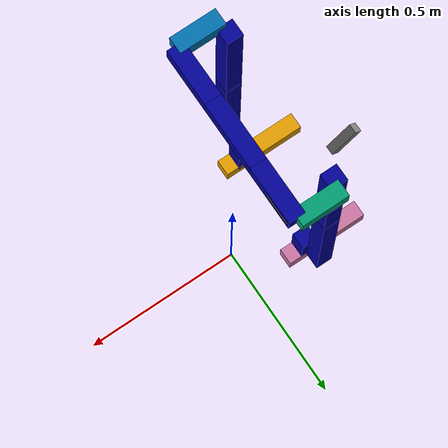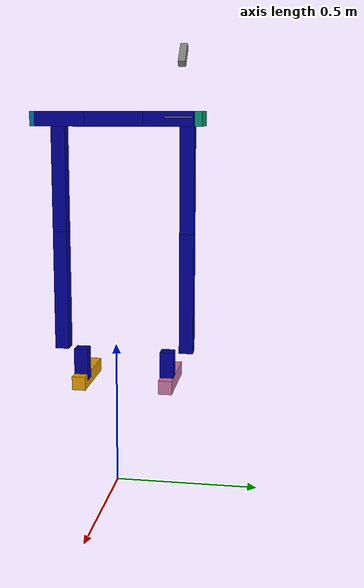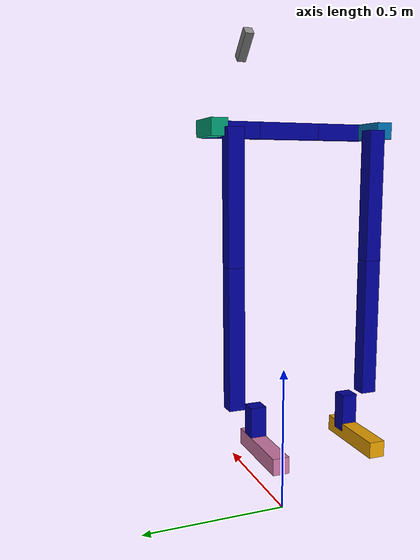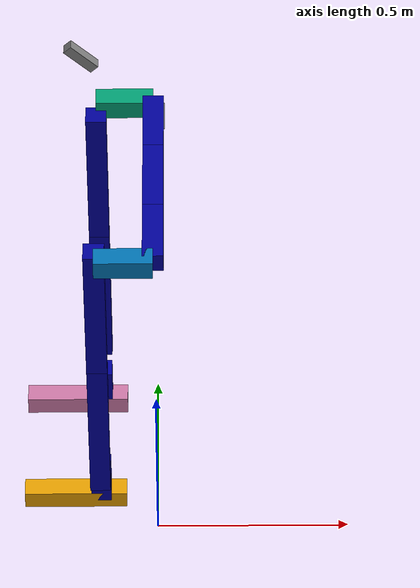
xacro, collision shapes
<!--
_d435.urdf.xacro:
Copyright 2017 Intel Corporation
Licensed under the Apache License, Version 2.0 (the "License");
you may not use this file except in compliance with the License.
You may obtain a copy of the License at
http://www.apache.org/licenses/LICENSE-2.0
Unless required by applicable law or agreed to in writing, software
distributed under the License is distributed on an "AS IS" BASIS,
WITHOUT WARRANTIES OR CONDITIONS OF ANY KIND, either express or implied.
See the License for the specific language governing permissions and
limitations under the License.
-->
<?xml version="1.0"?>
<!-- Revolute-Revolute Manipulator -->
<robot name="march" xmlns:xacro="http://www.ros.org/wiki/xacro">
    <!-- Switch between airgaiting or standing on the ground-->
    <!-- Value set to: 'world' fixes the robot to the world-->
    <!-- Value set to: 'base_link' makes the robot stand on the ground also set launch parameter fixed to false and set
    the hover_height to 0.0. Set ground_gait to true to ground gait in simulation.-->
    <xacro:arg name="ground_gait" default="false"/>

    <!--    Switch between using the physical camera and the simulation camera -->
    <!--    If set to 'true', no physical camera is needed -->
    <!--    If this value is set to 'false', the plugin will not be started and the topics -->
    <!--    published by the real camera will be used. -->
    <!--    In both these situations the camera will still be visible and placed in the urdf,-->
    <!--    to be used for the transformations.-->
    <xacro:arg name="realsense_simulation" default="false"/>

    <xacro:unless value="$(arg ground_gait)">
        <xacro:property name="parent_name" value="world"/>
        <xacro:property name="hover_height" value="0.3"/>
    </xacro:unless>
    <xacro:if value="$(arg ground_gait)">
        <xacro:property name="parent_name" value="base_link"/>
        <xacro:property name="hover_height" value="0.0"/>
        <gazebo>
            <plugin name="com_controller_plugin" filename="libmarch_gazebo_plugins.so"/>
        </gazebo>
    </xacro:if>

    <xacro:arg name="max_effort_rotary" default="18000.0" />
    <xacro:arg name="max_effort_linear" default="22932.0" />
    <xacro:property name="max_effort_rotary" value="$(arg max_effort_rotary)" />
    <xacro:property name="max_effort_linear" value="$(arg max_effort_linear)" />

    <!-- Values for the safety limits, see https://wiki.ros.org/pr2_controller_manager/safety_limits.
    BEWARE, these values are overwritten in march_word.launch when gazebo is launched! -->
    <xacro:arg name="k_velocity_value_hfe" default="20000.0" />
    <xacro:arg name="k_velocity_value_kfe" default="20000.0" />
    <xacro:arg name="k_velocity_value_haa" default="20000.0" />
    <xacro:arg name="k_velocity_value_adpf" default="20000.0" />
    <xacro:property name="k_velocity_value_hfe" value="$(arg k_velocity_value_hfe)" />
    <xacro:property name="k_velocity_value_kfe" value="$(arg k_velocity_value_kfe)" />
    <xacro:property name="k_velocity_value_haa" value="$(arg k_velocity_value_haa)" />
    <xacro:property name="k_velocity_value_adpf" value="$(arg k_velocity_value_adpf)" />

    <xacro:arg name="k_position_value_hfe" default="14.88" />
    <xacro:arg name="k_position_value_kfe" default="14.88" />
    <xacro:arg name="k_position_value_haa" default="4.0" />
    <xacro:arg name="k_position_value_adpf" default="5.0" />
    <xacro:property name="k_position_value_hfe" value="$(arg k_position_value_hfe)" />
    <xacro:property name="k_position_value_kfe" value="$(arg k_position_value_kfe)" />
    <xacro:property name="k_position_value_haa" value="$(arg k_position_value_haa)" />
    <xacro:property name="k_position_value_adpf" value="$(arg k_position_value_adpf)" />

    <!-- Constants for robot dimensions -->
    <!-- Masses determined in Catia, see https://confluence.projectmarch.nl:8443/display/51/URDF+description -->
    <xacro:property name="width" value="0.05"/> <!-- Square dimensions (widthxwidth) of beams -->

    <xacro:property name="hip_base_height" value="0.20"/>
    <xacro:property name="hip_base_mass" value="8.686"/>
    <!-- mass = Hip base + HAA actuators -->

    <xacro:property name="hip_aa_frame_height" value="0.170"/>
    <xacro:property name="hip_aa_frame_width" value="0.1395"/>
    <xacro:property name="hip_aa_mass" value="2.982"/>
    <!-- mass = Moving hip -->

    <xacro:property name="upper_leg_height" value="0.400"/>
    <xacro:property name="upper_leg_offset" value="0.04"/>
    <xacro:property name="upper_leg_mass" value="4.995"/>
    <!-- mass = KFE joint + HFE joint + Upper leg -->

    <xacro:property name="lower_leg_height" value="0.435"/>
    <xacro:property name="lower_leg_mass" value="4.458"/>
    <!-- mass = Ankle actuator + Lower leg -->

    <xacro:property name="ankle_plate_height" value="0.12"/>
    <xacro:property name="ankle_plate_offset" value="0.07"/>

    <xacro:property name="foot_height_forward" value="${0.194}"/>
    <xacro:property name="foot_height_backward" value="${0.064}"/>
    <xacro:property name="foot_mass" value="1.821"/>
    <xacro:property name="foot_mu1" value="1"/>
    <xacro:property name="foot_mu2" value="1"/>
    <!-- Minimum allowable depth before contact correction impulse is applied. -->
    <xacro:property name="foot_min_depth" value="0.0005"/>
    <!-- mass = Passive ankle + foot -->

    <!-- Center of Mass (CoM) of the parts -->
    <!-- CoM has been determined in Catia, see https://confluence.projectmarch.nl:8443/display/51/URDF+description -->
    <xacro:property name="hip_base_com_x" value="${-hip_aa_frame_width + 0.147989}"/>
    <xacro:property name="hip_base_com_y" value="0.016341"/>
    <xacro:property name="hip_base_com_z" value="0.147761"/>

    <xacro:property name="hip_aa_com_x" value="${-hip_aa_frame_width + 0.108094}"/>
    <xacro:property name="hip_aa_com_y" value="${-hip_base_height/2 - hip_aa_frame_height + 0.197758}"/>
    <xacro:property name="hip_aa_com_z" value="0.029507"/>

    <xacro:property name="upper_leg_com_x" value="0.000709"/>
    <xacro:property name="upper_leg_com_y" value="${-hip_base_height/2 - hip_aa_frame_height +
                                                    upper_leg_offset + 0.215254}"/>
    <xacro:property name="upper_leg_com_z" value="-0.19205"/>

    <xacro:property name="lower_leg_com_x" value="-0.00321"/>
    <xacro:property name="lower_leg_com_y" value="${-hip_base_height/2 - hip_aa_frame_height +
                                                    upper_leg_offset + 0.184081}"/>
    <xacro:property name="lower_leg_com_z" value="${upper_leg_height - 0.527082}"/>

    <xacro:property name="foot_com_x" value="-0.028926"/>
    <xacro:property name="foot_com_y" value="${-hip_base_height/2 - hip_aa_frame_height +
                                               upper_leg_offset + ankle_plate_offset + 0.155916}"/>
    <xacro:property name="foot_com_z" value="${upper_leg_height + lower_leg_height + ankle_plate_height - 0.789788}"/>
    <xacro:property name="foot_scale" value="1.35"/>

    <!-- Inertia of the parts -->
    <!-- Inertia's have been determined in Catia, see
         https://confluence.projectmarch.nl:8443/display/51/URDF+description -->
    <xacro:property name="hip_base_Ixx" value="0.141"/>
    <xacro:property name="hip_base_Ixy" value="0.0000336"/>
    <xacro:property name="hip_base_Ixz" value="-0.007"/>
    <xacro:property name="hip_base_Iyy" value="0.087"/>
    <xacro:property name="hip_base_Iyz" value="0.0005089"/>
    <xacro:property name="hip_base_Izz" value="0.091"/>

    <xacro:property name="hip_aa_Ixx" value="0.013"/>
    <xacro:property name="hip_aa_Ixy" value="0.008"/>
    <xacro:property name="hip_aa_Ixz" value="0.005"/>
    <xacro:property name="hip_aa_Iyy" value="0.023"/>
    <xacro:property name="hip_aa_Iyz" value="-0.001"/>
    <xacro:property name="hip_aa_Izz" value="0.028"/>

    <xacro:property name="upper_leg_Ixx" value="0.127"/>
    <xacro:property name="upper_leg_Ixy" value="0.0001291"/>
    <xacro:property name="upper_leg_Ixz" value="-0.0002056"/>
    <xacro:property name="upper_leg_Iyy" value="0.122"/>
    <xacro:property name="upper_leg_Iyz" value="0.016"/>
    <xacro:property name="upper_leg_Izz" value="0.015"/>

    <xacro:property name="lower_leg_Ixx" value="0.075"/>
    <xacro:property name="lower_leg_Ixy" value="-0.027"/>
    <xacro:property name="lower_leg_Ixz" value="-0.008"/>
    <xacro:property name="lower_leg_Iyy" value="0.11"/>
    <xacro:property name="lower_leg_Iyz" value="-0.002"/>
    <xacro:property name="lower_leg_Izz" value="0.071" />

    <xacro:property name="foot_Ixx" value="0.021"/>
    <xacro:property name="foot_Ixy" value="-0.002"/>
    <xacro:property name="foot_Ixz" value="0.02"/>
    <xacro:property name="foot_Iyy" value="0.027"/>
    <xacro:property name="foot_Iyz" value="0.004"/>
    <xacro:property name="foot_Izz" value="0.01" />

    <!-- Joint properties -->
    <!-- For limit calculations, see https://confluence.projectmarch.nl:8443/pages/viewpage.action?pageId=268697604 -->
    <xacro:property name="left_hip_fe_rotation_lower_limit" value="${-21.04431152*pi/180}"/> <!-- rad -->
    <xacro:property name="left_hip_fe_rotation_upper_limit" value="${98.97033691*pi/180}"/> <!-- rad -->

    <xacro:property name="right_hip_fe_rotation_lower_limit" value="${-20.23406982*pi/180}"/> <!-- rad -->
    <xacro:property name="right_hip_fe_rotation_upper_limit" value="${99.48120117*pi/180}"/> <!-- rad -->

    <xacro:property name="hip_fe_soft_buffer" value="${3*pi/180}"/> <!-- rad -->
    <xacro:property name="hip_fe_effort_limit" value="${max_effort_rotary}"/> <!-- IU -->
    <xacro:property name="hip_fe_velocity_limit" value="2.0"/> <!-- rad/s -->

    <xacro:property name="left_hip_aa_rotation_lower_limit" value="${-18.54492188*pi/180}"/> <!-- rad -->
    <xacro:property name="left_hip_aa_rotation_upper_limit" value="${16.34765625*pi/180}"/> <!-- rad -->

    <xacro:property name="right_hip_aa_rotation_lower_limit" value="${-18.10546875*pi/180}"/> <!-- rad -->
    <xacro:property name="right_hip_aa_rotation_upper_limit" value="${15.99609375*pi/180}"/> <!-- rad -->

    <xacro:property name="hip_aa_soft_buffer" value="${3.5*pi/180}"/> <!-- rad -->
    <xacro:property name="hip_aa_effort_limit" value="${max_effort_linear}"/> <!-- IU -->
    <xacro:property name="hip_aa_velocity_limit" value="1.0"/> <!-- rad/s -->

    <xacro:property name="left_knee_rotation_lower_limit" value="${-5.012512207*pi/180}"/>
    <xacro:property name="left_knee_rotation_upper_limit" value="${112.4230957*pi/180}"/>

    <xacro:property name="right_knee_rotation_lower_limit" value="${-4.89440918*pi/180}"/>
    <xacro:property name="right_knee_rotation_upper_limit" value="${115.3097534*pi/180}"/>

    <xacro:property name="knee_extension_soft_buffer" value="${3.5*pi/180}"/> <!-- rad -->
    <xacro:property name="knee_flexion_soft_buffer" value="${3*pi/180}"/> <!-- rad -->
    <xacro:property name="knee_effort_limit" value="${max_effort_rotary}"/> <!-- IU -->
    <xacro:property name="knee_velocity_limit" value="2.5"/>

    <xacro:property name="left_ankle_rotation_lower_limit" value="${-26.30401611*pi/180}"/>
    <xacro:property name="left_ankle_rotation_upper_limit" value="${15.88348389*pi/180}"/>

    <xacro:property name="right_ankle_rotation_lower_limit" value="${-23.203125*pi/180}"/>
    <xacro:property name="right_ankle_rotation_upper_limit" value="${14.23828125*pi/180}"/>

    <xacro:property name="ankle_dorsalflexion_soft_buffer" value="${5*pi/180}"/> <!-- rad -->
    <xacro:property name="ankle_plantarflexion_soft_buffer" value="${3*pi/180}"/> <!-- rad -->
    <xacro:property name="ankle_effort_limit" value="${max_effort_linear}"/> <!-- IU -->
    <xacro:property name="ankle_velocity_limit" value="1.0"/>

    <xacro:property name="camera_link" value="0.05"/> <!-- Size of square 'camera' box -->
    <xacro:property name="axel_offset" value="0.05"/> <!-- Space btw top of beam and the each joint -->

    <!-- Import all Gazebo-customization elements, including Gazebo colors -->
    <xacro:include filename="march.gazebo"/>

    <material name="blue">
        <color rgba="0 0 0.6 1"/>
    </material>

    <!-- Used for fixing robot to Gazebo 'base_link' -->
    <link name="${parent_name}"/>

    <!-- Parts -->
    <!-- Hip-->
    <link name="hip_base">
        <visual>
            <origin xyz="${-hip_aa_frame_width} 0 0" rpy="0 0 ${pi}"/>
            <geometry>
                <mesh filename="package://march_description/urdf/stl-files/HipBase.stl" scale="1 1 1"/>
            </geometry>
            <material name="blue"/>
        </visual>

        <inertial>
            <origin xyz="${hip_base_com_x} ${hip_base_com_y} ${hip_base_com_z}" rpy="0 0 0"/>
            <mass value="${hip_base_mass}"/>
            <inertia
                    ixx="${hip_base_Ixx}"
                    ixy="${hip_base_Ixy}"
                    ixz="${hip_base_Ixz}"
                    iyy="${hip_base_Iyy}"
                    iyz="${hip_base_Iyz}"
                    izz="${hip_base_Izz}" />
        </inertial>

        <collision>
            <origin xyz="0 0 0" rpy="0 0 0"/>
            <geometry>
                <box size="${width} ${hip_base_height} ${width}"/>
            </geometry>
        </collision>
    </link>

    <!-- IMU-->
    <link name="imu_link">
    </link>

    <!-- Left Moving Hip-->
    <link name="hip_aa_frame_left_side">
        <visual>
            <origin xyz="${-hip_aa_frame_width} ${hip_base_height/2} 0" rpy="0 0 ${pi}"/>
            <geometry>
                <mesh filename="package://march_description/urdf/stl-files/LeftHAA.stl" scale="1 1 1"/>
            </geometry>
            <material name="blue"/>
        </visual>

        <collision>
            <origin xyz="0 ${-hip_aa_frame_height/2} 0" rpy="0 0 0"/>
            <geometry>
                <box size="${width} ${hip_aa_frame_height} ${width}"/>
            </geometry>
        </collision>
    </link>

    <link name="hip_aa_frame_left_front">
        <inertial>
            <origin xyz="${hip_aa_com_x} ${-hip_aa_com_y} ${hip_aa_com_z}" rpy="0 0 0"/>
            <mass value="${hip_aa_mass}"/>
            <inertia
                    ixx="${hip_aa_Ixx}"
                    ixy="${-hip_aa_Ixy}"
                    ixz="${hip_aa_Ixz}"
                    iyy="${hip_aa_Iyy}"
                    iyz="${-hip_aa_Iyz}"
                    izz="${hip_aa_Izz}" />
        </inertial>

        <collision>
            <origin xyz="${-hip_aa_frame_width/2} 0 0" rpy="0 0 0"/>
            <geometry>
                <box size="${hip_aa_frame_width} ${width} ${width}"/>
            </geometry>
        </collision>
    </link>

    <!-- Upper Leg Left-->
    <link name="upper_leg_left">
        <visual>
            <origin xyz="0 ${hip_base_height/2 + hip_aa_frame_height - upper_leg_offset} 0" rpy="0 0 ${pi}"/>
            <geometry>
                <mesh filename="package://march_description/urdf/stl-files/UpperLeftLeg.stl" scale="1 1 1"/>
            </geometry>
            <material name="blue"/>
        </visual>

        <inertial>
            <origin xyz="${upper_leg_com_x} ${-upper_leg_com_y} ${upper_leg_com_z}" rpy="0 0 0"/>
            <mass value="${upper_leg_mass}"/>
            <inertia
                    ixx="${upper_leg_Ixx}"
                    ixy="${-upper_leg_Ixy}"
                    ixz="${upper_leg_Ixz}"
                    iyy="${upper_leg_Iyy}"
                    iyz="${-upper_leg_Iyz}"
                    izz="${upper_leg_Izz}" />
        </inertial>

        <collision>
            <origin xyz="0 0 ${-upper_leg_height/2}" rpy="0 0 0"/>
            <geometry>
                <box size="${width} ${width} ${upper_leg_height}"/>
            </geometry>
        </collision>
    </link>

    <!-- Lower Leg Left -->
    <link name="lower_leg_left">
        <visual>
            <origin
                xyz="0 ${hip_base_height/2 + hip_aa_frame_height - upper_leg_offset} ${upper_leg_height}"
                rpy="0 0 ${pi}"
            />
            <geometry>
                <mesh filename="package://march_description/urdf/stl-files/LowerLeftLeg.stl" scale="1 1 1"/>
            </geometry>
            <material name="blue"/>
        </visual>

        <inertial>
            <origin xyz="${lower_leg_com_x} ${-lower_leg_com_y} ${lower_leg_com_z}" rpy="0 0 0"/>
            <mass value="${lower_leg_mass}"/>
            <inertia
                    ixx="${lower_leg_Ixx}"
                    ixy="${-lower_leg_Ixy}"
                    ixz="${lower_leg_Ixz}"
                    iyy="${lower_leg_Iyy}"
                    iyz="${-lower_leg_Iyz}"
                    izz="${lower_leg_Izz}" />
        </inertial>

        <collision>
            <origin xyz="0 0 ${-lower_leg_height/2}" rpy="0 0 0"/>
            <geometry>
                <box size="${width} ${width} ${lower_leg_height}"/>
            </geometry>
        </collision>
    </link>

    <!-- Ankle plate Left -->
    <link name="ankle_plate_left">
        <visual>
            <origin
                xyz="0
                     ${hip_base_height/2 + hip_aa_frame_height - upper_leg_offset - ankle_plate_offset}
                     ${foot_scale * (upper_leg_height + lower_leg_height)}"
                rpy="0 0 ${pi}"
            />
            <geometry>
                <mesh filename="package://march_description/urdf/stl-files/LeftFoot.stl" scale="1 1 ${foot_scale}"/>
            </geometry>
            <material name="blue"/>
        </visual>
        <collision>
            <origin xyz="0 0 ${-ankle_plate_height/2}" rpy="0 0 0"/>
            <geometry>
                <box size="${width} ${width} ${ankle_plate_height}"/>
            </geometry>
        </collision>
    </link>

    <gazebo reference="ankle_plate_left">
        <sensor name="ankle_plate_left_contact" type="contact">
            <plugin name="contact_plugin" filename="libcontact.so"/>
            <contact>
                <collision>ankle_plate_left_fixed_joint_lump__foot_left_collision_1</collision>
            </contact>
            <update_rate>30</update_rate>
            <always_on>true</always_on>
        </sensor>
    </gazebo>

    <!-- Foot Left -->
    <link name="foot_left">
        <inertial>
            <origin xyz="${foot_com_x} ${-foot_com_y} ${foot_com_z}" rpy="0 0 0"/>
            <mass value="${foot_mass}"/>
            <inertia
                    ixx="${foot_Ixx}"
                    ixy="${-foot_Ixy}"
                    ixz="${foot_Ixz}"
                    iyy="${foot_Iyy}"
                    iyz="${-foot_Iyz}"
                    izz="${foot_Izz}" />
        </inertial>
        <collision>
            <origin xyz="${(-foot_height_forward+foot_height_backward)/2} 0 0" rpy="0 0 0"/>
            <geometry>
                <box size="${foot_height_forward+foot_height_backward} ${width} ${width}"/>
            </geometry>
        </collision>
    </link>

    <gazebo reference="foot_left">
        <mu1>${foot_mu1}</mu1>
        <mu2>${foot_mu2}</mu2>
        <minDepth>${foot_min_depth}</minDepth>
        <fdir1>1 0 0</fdir1>
    </gazebo>

    <!-- Right Moving Hip-->
    <link name="hip_aa_frame_right_side">
        <visual>
            <origin xyz="${-hip_aa_frame_width} ${-hip_base_height/2} 0" rpy="0 0 ${pi}"/>
            <geometry>
                <mesh filename="package://march_description/urdf/stl-files/RightHAA.stl" scale="1 1 1"/>
            </geometry>
            <material name="blue"/>
        </visual>

        <collision>
            <origin xyz="0 ${hip_aa_frame_height/2} 0" rpy="0 0 0"/>
            <geometry>
                <box size="${width} ${hip_aa_frame_height} ${width}"/>
            </geometry>
        </collision>
    </link>

    <link name="hip_aa_frame_right_front">
        <inertial>
            <origin xyz="${hip_aa_com_x} ${hip_aa_com_y} ${hip_aa_com_z}" rpy="0 0 0"/>
            <mass value="${hip_aa_mass}"/>
            <inertia
                    ixx="${hip_aa_Ixx}"
                    ixy="${hip_aa_Ixy}"
                    ixz="${hip_aa_Ixz}"
                    iyy="${hip_aa_Iyy}"
                    iyz="${hip_aa_Iyz}"
                    izz="${hip_aa_Izz}" />
        </inertial>

        <collision>
            <origin xyz="${-hip_aa_frame_width/2} 0 0" rpy="0 0 0"/>
            <geometry>
                <box size="${hip_aa_frame_width} ${width} ${width}"/>
            </geometry>
        </collision>
    </link>

    <!-- Upper Leg Right-->
    <link name="upper_leg_right">
        <visual>
            <origin xyz="0 ${-hip_base_height/2 - hip_aa_frame_height + upper_leg_offset} 0" rpy="0 0 ${pi}"/>
            <geometry>
                <mesh filename="package://march_description/urdf/stl-files/UpperRightLeg.stl" scale="1 1 1"/>
            </geometry>
            <material name="blue"/>
        </visual>

        <inertial>
            <origin xyz="${upper_leg_com_x} ${upper_leg_com_y} ${upper_leg_com_z}" rpy="0 0 0"/>
            <mass value="${upper_leg_mass}"/>
            <inertia
                    ixx="${upper_leg_Ixx}"
                    ixy="${upper_leg_Ixy}"
                    ixz="${upper_leg_Ixz}"
                    iyy="${upper_leg_Iyy}"
                    iyz="${upper_leg_Iyz}"
                    izz="${upper_leg_Izz}" />
        </inertial>

        <collision>
            <origin xyz="0 0 ${-upper_leg_height/2}" rpy="0 0 0"/>
            <geometry>
                <box size="${width} ${width} ${upper_leg_height}"/>
            </geometry>
        </collision>

    </link>

    <!-- Lower Leg Right -->
    <link name="lower_leg_right">
        <visual>
            <origin
                xyz="0 ${-hip_base_height/2 - hip_aa_frame_height + upper_leg_offset} ${upper_leg_height}"
                rpy="0 0 ${pi}"
            />
            <geometry>
                <mesh filename="package://march_description/urdf/stl-files/LowerRightLeg.stl" scale="1 1 1"/>
            </geometry>
            <material name="blue"/>
        </visual>

        <inertial>
            <origin xyz="${lower_leg_com_x} ${lower_leg_com_y} ${lower_leg_com_z}" rpy="0 0 0"/>
            <mass value="${lower_leg_mass}"/>
            <inertia
                    ixx="${lower_leg_Ixx}"
                    ixy="${lower_leg_Ixy}"
                    ixz="${lower_leg_Ixz}"
                    iyy="${lower_leg_Iyy}"
                    iyz="${lower_leg_Iyz}"
                    izz="${lower_leg_Izz}" />
        </inertial>

        <collision>
            <origin xyz="0 0 ${-lower_leg_height/2}" rpy="0 0 0"/>
            <geometry>
                <box size="${width} ${width} ${lower_leg_height}"/>
            </geometry>
        </collision>
    </link>

    <!-- Ankle Plate Right -->
    <link name="ankle_plate_right">
        <visual>
            <origin
                xyz="0
                    ${-hip_base_height/2 - hip_aa_frame_height+ upper_leg_offset + ankle_plate_offset}
                    ${foot_scale * (upper_leg_height + lower_leg_height)}"
                rpy="0 0 ${pi}"/>
            />
            <geometry>
                <mesh filename="package://march_description/urdf/stl-files/RightFoot.stl" scale="1 1 ${foot_scale}"/>
            </geometry>
            <material name="blue"/>
        </visual>
        <collision>
            <origin xyz="0 0 ${-ankle_plate_height/2}" rpy="0 0 0"/>
            <geometry>
                <box size="${width} ${width} ${ankle_plate_height}"/>
            </geometry>
        </collision>
    </link>

    <gazebo reference="ankle_plate_right">
        <sensor name="ankle_plate_right_contact" type="contact">
            <plugin name="contact_plugin" filename="libcontact.so"/>
            <contact>
                <collision>ankle_plate_right_fixed_joint_lump__foot_right_collision_1</collision>
            </contact>
            <update_rate>30</update_rate>
            <always_on>true</always_on>
        </sensor>
    </gazebo>

    <!-- Foot Right -->
    <link name="foot_right">
        <inertial>
            <origin xyz="${foot_com_x} ${foot_com_y} ${foot_com_z}" rpy="0 0 0"/>
            <mass value="${foot_mass}"/>
            <inertia
                    ixx="${foot_Ixx}"
                    ixy="${foot_Ixy}"
                    ixz="${foot_Ixz}"
                    iyy="${foot_Iyy}"
                    iyz="${foot_Iyz}"
                    izz="${foot_Izz}" />
        </inertial>
        <collision>
            <origin xyz="${(-foot_height_forward+foot_height_backward)/2} 0 0" rpy="0 0 0"/>
            <geometry>
                <box size="${foot_height_forward+foot_height_backward} ${width} ${width}"/>
            </geometry>
        </collision>
    </link>

    <gazebo reference="foot_right">
        <mu1>${foot_mu1}</mu1>
        <mu2>${foot_mu2}</mu2>
        <minDepth>${foot_min_depth}</minDepth>
        <fdir1>1 0 0</fdir1>
    </gazebo>

    <!-- Joints -->
    <joint name="imu_joint" type="fixed">
        <parent link="${parent_name}"/>
        <child link="imu_link"/>
    </joint>

    <joint name="hip" type="fixed">
        <parent link="imu_link"/>
        <child link="hip_base"/>
        <origin xyz="0 0 ${lower_leg_height+upper_leg_height+ankle_plate_height+width/2.0+hover_height}" rpy="0 0 0"/>
    </joint>

    <joint name="left_hip_aa" type="revolute">
        <parent link="hip_base"/>
        <child link="hip_aa_frame_left_side"/>
        <origin xyz="0 ${-hip_base_height/2} 0" rpy="0 0 0"/>
        <axis xyz="-1 0 0"/>

        <limit velocity="${hip_aa_velocity_limit}"
               effort="${hip_aa_effort_limit}"
               lower="${left_hip_aa_rotation_lower_limit}"
               upper="${left_hip_aa_rotation_upper_limit}"/>
        <safety_controller soft_lower_limit="${left_hip_aa_rotation_lower_limit + hip_aa_soft_buffer}"
                           soft_upper_limit="${left_hip_aa_rotation_upper_limit - hip_aa_soft_buffer}"
                           k_position="${k_position_value_haa}"
                           k_velocity="${k_velocity_value_haa}" />
    </joint>

    <joint name="left_hip_angle" type="fixed">
        <parent link="hip_aa_frame_left_side"/>
        <child link="hip_aa_frame_left_front"/>
        <origin xyz="0 ${-hip_aa_frame_height} 0" rpy="0 0 0"/>
    </joint>

    <joint name="left_hip_fe" type="revolute">
        <parent link="hip_aa_frame_left_front"/>
        <child link="upper_leg_left"/>
        <origin xyz="${-hip_aa_frame_width} ${upper_leg_offset} 0" rpy="0 0 0"/>
        <axis xyz="0 1 0"/>

        <limit velocity="${hip_fe_velocity_limit}"
               effort="${hip_fe_effort_limit}"
               lower="${left_hip_fe_rotation_lower_limit}"
               upper="${left_hip_fe_rotation_upper_limit}"/>
        <safety_controller soft_lower_limit="${left_hip_fe_rotation_lower_limit + hip_fe_soft_buffer}"
                           soft_upper_limit="${left_hip_fe_rotation_upper_limit - hip_fe_soft_buffer}"
                           k_position="${k_position_value_hfe}"
                           k_velocity="${k_velocity_value_hfe}" />
    </joint>

    <joint name="left_knee" type="revolute">
        <parent link= "upper_leg_left"/>
        <child link="lower_leg_left"/>
        <origin xyz="0 0 ${-upper_leg_height}" rpy="0 0 0"/>
        <axis xyz="0 -1 0"/>

        <limit velocity="${knee_velocity_limit}"
               effort="${knee_effort_limit}"
               lower="${left_knee_rotation_lower_limit}"
               upper="${left_knee_rotation_upper_limit}"/>
        <safety_controller soft_lower_limit="${left_knee_rotation_lower_limit + knee_extension_soft_buffer}"
                           soft_upper_limit="${left_knee_rotation_upper_limit - knee_flexion_soft_buffer}"
                           k_position="${k_position_value_kfe}"
                           k_velocity="${k_velocity_value_kfe}" />
    </joint>

    <joint name="left_ankle" type="revolute">
        <parent link="lower_leg_left"/>
        <child link="ankle_plate_left"/>
        <origin xyz="0 ${ankle_plate_offset} ${-lower_leg_height}" rpy="0 0 0"/>
        <axis xyz="0 1 0"/>

        <limit velocity="${ankle_velocity_limit}"
               effort="${ankle_effort_limit}"
               lower="${left_ankle_rotation_lower_limit}"
               upper="${left_ankle_rotation_upper_limit}"/>
        <safety_controller soft_lower_limit="${left_ankle_rotation_lower_limit + ankle_plantarflexion_soft_buffer}"
                           soft_upper_limit="${left_ankle_rotation_upper_limit - ankle_dorsalflexion_soft_buffer}"
                           k_position="${k_position_value_adpf}"
                           k_velocity="${k_velocity_value_adpf}" />
    </joint>

    <joint name="left_foot_angle" type="fixed">
        <parent link="ankle_plate_left"/>
        <child link="foot_left"/>
        <origin xyz="0 0 ${-ankle_plate_height}" rpy="0 0 0"/>
    </joint>

    <joint name="right_hip_aa" type="revolute">
        <parent link="hip_base"/>
        <child link="hip_aa_frame_right_side"/>
        <origin xyz="0 ${hip_base_height/2} 0" rpy="0 0 0"/>
        <axis xyz="1 0 0"/>

        <limit velocity="${hip_aa_velocity_limit}"
               effort="${hip_aa_effort_limit}"
               lower="${right_hip_aa_rotation_lower_limit}"
               upper="${right_hip_aa_rotation_upper_limit}"/>
        <safety_controller soft_lower_limit="${right_hip_aa_rotation_lower_limit + hip_aa_soft_buffer}"
                           soft_upper_limit="${right_hip_aa_rotation_upper_limit - hip_aa_soft_buffer}"
                           k_position="${k_position_value_haa}"
                           k_velocity="${k_velocity_value_haa}" />

    </joint>

    <joint name="right_hip_angle" type="fixed">
        <parent link="hip_aa_frame_right_side"/>
        <child link="hip_aa_frame_right_front"/>
        <origin xyz="0 ${hip_aa_frame_height} 0" rpy="0 0 0"/>
    </joint>

    <joint name="right_hip_fe" type="revolute">
        <parent link="hip_aa_frame_right_front"/>
        <child link="upper_leg_right"/>
        <origin xyz="${-hip_aa_frame_width} ${-upper_leg_offset} 0" rpy="0 0 0"/>
        <axis xyz="0 1 0"/>

        <limit velocity="${hip_fe_velocity_limit}"
               effort="${hip_fe_effort_limit}"
               lower="${right_hip_fe_rotation_lower_limit}"
               upper="${right_hip_fe_rotation_upper_limit}"/>
        <safety_controller soft_lower_limit="${right_hip_fe_rotation_lower_limit + hip_fe_soft_buffer}"
                           soft_upper_limit="${right_hip_fe_rotation_upper_limit - hip_fe_soft_buffer}"
                           k_position="${k_position_value_hfe}"
                           k_velocity="${k_velocity_value_hfe}" />

    </joint>

    <joint name="right_knee" type="revolute">
        <parent link="upper_leg_right"/>
        <child link="lower_leg_right"/>
        <origin xyz="0 0 ${-upper_leg_height}" rpy="0 0 0"/>
        <axis xyz="0 -1 0"/>

        <limit velocity="${knee_velocity_limit}"
               effort="${knee_effort_limit}"
               lower="${right_knee_rotation_lower_limit}"
               upper="${right_knee_rotation_upper_limit}"/>
        <safety_controller soft_lower_limit="${right_knee_rotation_lower_limit + knee_extension_soft_buffer}"
                           soft_upper_limit="${right_knee_rotation_upper_limit - knee_flexion_soft_buffer}"
                           k_position="${k_position_value_kfe}"
                           k_velocity="${k_velocity_value_kfe}" />
    </joint>

    <joint name="right_ankle" type="revolute">
        <parent link="lower_leg_right"/>
        <child link="ankle_plate_right"/>
        <origin xyz="0 ${-ankle_plate_offset} ${-lower_leg_height}" rpy="0 0 0"/>
        <axis xyz="0 1 0"/>

        <limit velocity="${ankle_velocity_limit}"
               effort="${ankle_effort_limit}"
               lower="${right_ankle_rotation_lower_limit}"
               upper="${right_ankle_rotation_upper_limit}"/>
        <safety_controller soft_lower_limit="${right_ankle_rotation_lower_limit + ankle_plantarflexion_soft_buffer}"
                           soft_upper_limit="${right_ankle_rotation_upper_limit - ankle_dorsalflexion_soft_buffer}"
                           k_position="${k_position_value_adpf}"
                           k_velocity="${k_velocity_value_adpf}" />
    </joint>

    <joint name="right_foot_angle" type="fixed">
        <parent link="ankle_plate_right"/>
        <child link="foot_right"/>
        <origin xyz="0 0 ${-ankle_plate_height}" rpy="0 0 0"/>
    </joint>

    <xacro:include filename="camera/_d435.urdf.xacro" />
    <xacro:sensor_d435 name="camera_front" topics_ns="camera_front" parent="hip_base"
                       plugin="$(arg realsense_simulation)">
        <!--    Attached to the hip_base, since this is most comparable to the backpack -->
        <!--    in amount of movement, the distance from hip base is based on first design.-->
        <origin xyz="-0.17 0.195 0.215" rpy="${0.5 * pi} ${0.25 * pi} ${pi}"/>
        <!-- Rotate to be vertical and pointing down 45 degrees -->
    </xacro:sensor_d435>

    <xacro:sensor_d435 name="camera_back" topics_ns="camera_back" parent="hip_base"
                       plugin="$(arg realsense_simulation)">
        <origin xyz="0 0.22 0" rpy="0 ${0.3 * pi} 0"/>
    </xacro:sensor_d435>

    <!-- ROS Control plugin for Gazebo -->
    <transmission name="left_hip_aa">
        <type>transmission_interface/SimpleTransmission</type>
        <joint name="left_hip_aa">
            <hardwareInterface>hardware_interface/EffortJointInterface</hardwareInterface>
        </joint>
        <actuator name="left_hip_aa_motor">
            <mechanicalReduction>200</mechanicalReduction>
        </actuator>
    </transmission>

    <transmission name="left_hip_fe">
        <type>transmission_interface/SimpleTransmission</type>
        <joint name="left_hip_fe">
            <hardwareInterface>hardware_interface/EffortJointInterface</hardwareInterface>
        </joint>
        <actuator name="left_hip_fe_motor">
            <mechanicalReduction>101</mechanicalReduction>
        </actuator>
    </transmission>

    <transmission name="left_knee">
        <type>transmission_interface/SimpleTransmission</type>
        <joint name="left_knee">
            <hardwareInterface>hardware_interface/EffortJointInterface</hardwareInterface>
        </joint>
        <actuator name="left_knee_motor">
            <mechanicalReduction>101</mechanicalReduction>
        </actuator>
    </transmission>

    <transmission name="left_ankle">
        <type>transmission_interface/SimpleTransmission</type>
        <joint name="left_ankle">
            <hardwareInterface>hardware_interface/EffortJointInterface</hardwareInterface>
        </joint>
        <actuator name="left_ankle_motor">
            <mechanicalReduction>200</mechanicalReduction>
        </actuator>
    </transmission>

    <transmission name="right_hip_aa">
        <type>transmission_interface/SimpleTransmission</type>
        <joint name="right_hip_aa">
            <hardwareInterface>hardware_interface/EffortJointInterface</hardwareInterface>
        </joint>
        <actuator name="right_hip_aa_motor">
            <mechanicalReduction>200</mechanicalReduction>
        </actuator>
    </transmission>

    <transmission name="right_hip_fe">
        <type>transmission_interface/SimpleTransmission</type>
        <joint name="right_hip_fe">
            <hardwareInterface>hardware_interface/EffortJointInterface</hardwareInterface>
        </joint>
        <actuator name="right_hip_fe_motor">
            <mechanicalReduction>101</mechanicalReduction>
        </actuator>
    </transmission>

    <transmission name="right_knee">
        <type>transmission_interface/SimpleTransmission</type>
        <joint name="right_knee">
            <hardwareInterface>hardware_interface/EffortJointInterface</hardwareInterface>
        </joint>
        <actuator name="right_knee_motor">
            <mechanicalReduction>101</mechanicalReduction>
        </actuator>
    </transmission>

    <transmission name="right_ankle">
        <type>transmission_interface/SimpleTransmission</type>
        <joint name="right_ankle">
            <hardwareInterface>hardware_interface/EffortJointInterface</hardwareInterface>
        </joint>
        <actuator name="right_ankle_motor">
            <mechanicalReduction>200</mechanicalReduction>
        </actuator>
    </transmission>
</robot>

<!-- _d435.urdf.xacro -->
<robot name="sensor_d435" xmlns:xacro="http://ros.org/wiki/xacro">
  <!--File includes-->
  <xacro:include filename="_d435.gazebo.xacro"/>

  <xacro:macro name="sensor_d435"
               params="name:=camera topics_ns:=camera parent plugin *origin publish_pointcloud:=true">
    <xacro:property name="M_PI" value="3.1415926535897931" />

    <!-- The following values are approximate, and the camera node
     publishing TF values with actual calibrated camera extrinsic values -->
    <xacro:property name="d435_cam_depth_to_left_ir_offset" value="0.0"/>
    <xacro:property name="d435_cam_depth_to_right_ir_offset" value="-0.050"/>
    <xacro:property name="d435_cam_depth_to_color_offset" value="0.015"/>

    <!-- The following values model the aluminum peripherial case for the
    D435 camera, with the camera joint represented by the actual
    peripherial camera tripod mount -->
    <xacro:property name="d435_cam_width" value="0.090"/>
    <xacro:property name="d435_cam_height" value="0.025"/>
    <xacro:property name="d435_cam_depth" value="0.02505"/>
    <xacro:property name="d435_cam_mount_from_center_offset" value="0.0149"/>

    <!-- The following offset is relative the the physical D435 camera peripherial
    camera tripod mount -->
    <xacro:property name="d435_cam_depth_px" value="${d435_cam_mount_from_center_offset}"/>
    <xacro:property name="d435_cam_depth_py" value="0.0175"/>
    <xacro:property name="d435_cam_depth_pz" value="${d435_cam_height/2}"/>

    <material name="${name}_aluminum">
    <color rgba="0.5 0.5 0.5 1"/>
    </material>

    <!-- camera body, with origin at bottom screw mount -->
    <joint name="${name}_joint" type="fixed">
      <xacro:insert_block name="origin" />
      <parent link="${parent}"/>
      <child link="${name}_bottom_screw_frame" />
    </joint>
    <link name="${name}_bottom_screw_frame"/>

    <joint name="${name}_link_joint" type="fixed">
      <origin xyz="0 ${d435_cam_depth_py} ${d435_cam_depth_pz}" rpy="0 0 0"/>
      <parent link="${name}_bottom_screw_frame"/>
      <child link="${name}_link" />
    </joint>

    <link name="${name}_link">
      <visual>
      <origin xyz="${d435_cam_mount_from_center_offset} ${-d435_cam_depth_py} 0" rpy="${M_PI/2} 0 ${M_PI/2}"/>
        <geometry>
          <mesh filename="package://march_description/urdf/camera/_d435.dae" />
        </geometry>
        <material name="${name}_aluminum"/>
      </visual>
      <collision>
        <origin xyz="0 ${-d435_cam_depth_py} 0" rpy="0 0 0"/>
        <geometry>
        <box size="${d435_cam_depth} ${d435_cam_width} ${d435_cam_height}"/>
        </geometry>
      </collision>
      <inertial>
        <!-- The following are not reliable values, and should not be used for modeling -->
        <mass value="0.564" />
        <origin xyz="0 0 0" />
        <inertia ixx="0.003881243" ixy="0.0" ixz="0.0" iyy="0.000498940" iyz="0.0" izz="0.003879257" />
      </inertial>
    </link>

    <!-- camera depth joints and links -->
    <joint name="${name}_depth_joint" type="fixed">
      <origin xyz="0 0 0" rpy="0 0 0"/>
      <parent link="${name}_link"/>
      <child link="${name}_depth_frame" />
    </joint>
    <link name="${name}_depth_frame"/>

    <joint name="${name}_depth_optical_joint" type="fixed">
      <origin xyz="0 0 0" rpy="${-M_PI/2} 0 ${-M_PI/2}" />
      <parent link="${name}_depth_frame" />
      <child link="${name}_depth_optical_frame" />
    </joint>
    <link name="${name}_depth_optical_frame"/>

    <!-- camera left IR joints and links -->
    <joint name="${name}_left_ir_joint" type="fixed">
      <origin xyz="0 ${d435_cam_depth_to_left_ir_offset} 0" rpy="0 0 0" />
      <parent link="${name}_depth_frame" />
      <child link="${name}_left_ir_frame" />
    </joint>
    <link name="${name}_left_ir_frame"/>

    <joint name="${name}_left_ir_optical_joint" type="fixed">
      <origin xyz="0 0 0" rpy="${-M_PI/2} 0 ${-M_PI/2}" />
      <parent link="${name}_left_ir_frame" />
      <child link="${name}_left_ir_optical_frame" />
    </joint>
    <link name="${name}_left_ir_optical_frame"/>

    <!-- camera right IR joints and links -->
    <joint name="${name}_right_ir_joint" type="fixed">
      <origin xyz="0 ${d435_cam_depth_to_right_ir_offset} 0" rpy="0 0 0" />
      <parent link="${name}_depth_frame" />
      <child link="${name}_right_ir_frame" />
    </joint>
    <link name="${name}_right_ir_frame"/>

    <joint name="${name}_right_ir_optical_joint" type="fixed">
      <origin xyz="0 0 0" rpy="${-M_PI/2} 0 ${-M_PI/2}" />
      <parent link="${name}_right_ir_frame" />
      <child link="${name}_right_ir_optical_frame" />
    </joint>
    <link name="${name}_right_ir_optical_frame"/>

    <!-- camera color joints and links -->
    <joint name="${name}_color_joint" type="fixed">
      <origin xyz="0 ${d435_cam_depth_to_color_offset} 0" rpy="0 0 0" />
      <parent link="${name}_depth_frame" />
      <child link="${name}_color_frame" />
    </joint>
    <link name="${name}_color_frame"/>

    <joint name="${name}_color_optical_joint" type="fixed">
      <origin xyz="0 0 0" rpy="${-M_PI/2} 0 ${-M_PI/2}" />
      <parent link="${name}_color_frame" />
      <child link="${name}_color_optical_frame" />
    </joint>
    <link name="${name}_color_optical_frame"/>

    <link name="${name}_imu_optical_frame"/>
    <joint name="${name}_imu_optical_joint" type="fixed">
      <origin xyz="0 0 0" rpy="${-M_PI/2} 0 ${-M_PI/2}"/>
      <parent link="${name}_depth_frame" />
      <child link="${name}_imu_optical_frame"/>
    </joint>

    <xacro:if value="${name == 'camera_back'}">
      <link name="camera_imu_optical_frame"/>
      <joint name="camera_imu_optical_joint" type="fixed">
        <origin xyz="0 0 0" rpy="0 0 0"/>
        <parent link="camera_back_imu_optical_frame" />
        <child link="camera_imu_optical_frame"/>
      </joint>
    </xacro:if>

    <!-- Realsense Gazebo Plugin -->
    <xacro:if value="${plugin}">
      <xacro:gazebo_d435 camera_name="${name}" reference_link="${name}_link" topics_ns="${topics_ns}" depth_optical_frame="${name}_depth_optical_frame" color_optical_frame="${name}_color_optical_frame" infrared1_optical_frame="${name}_left_ir_optical_frame" infrared2_optical_frame="${name}_right_ir_optical_frame" publish_pointcloud="${publish_pointcloud}"/>
    </xacro:if>
  </xacro:macro>
</robot>
